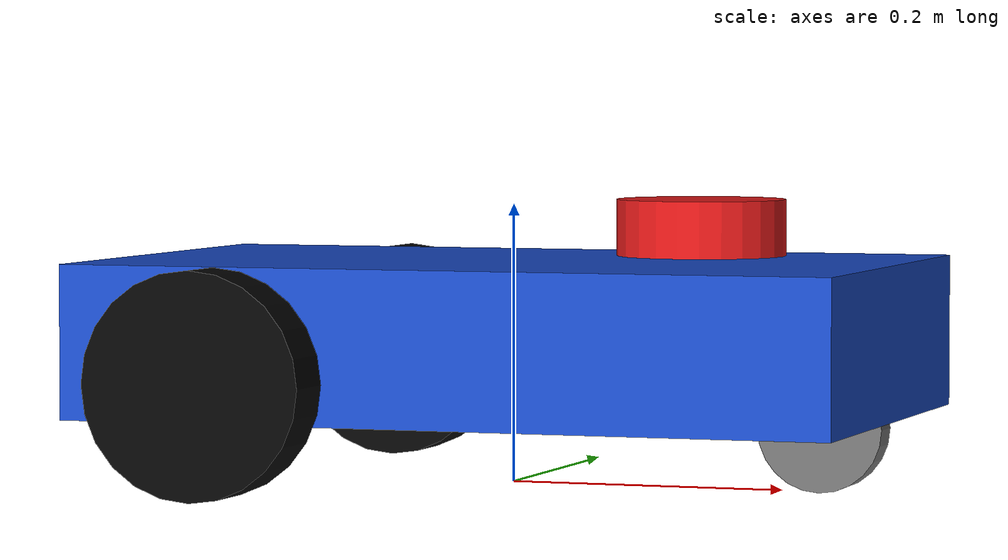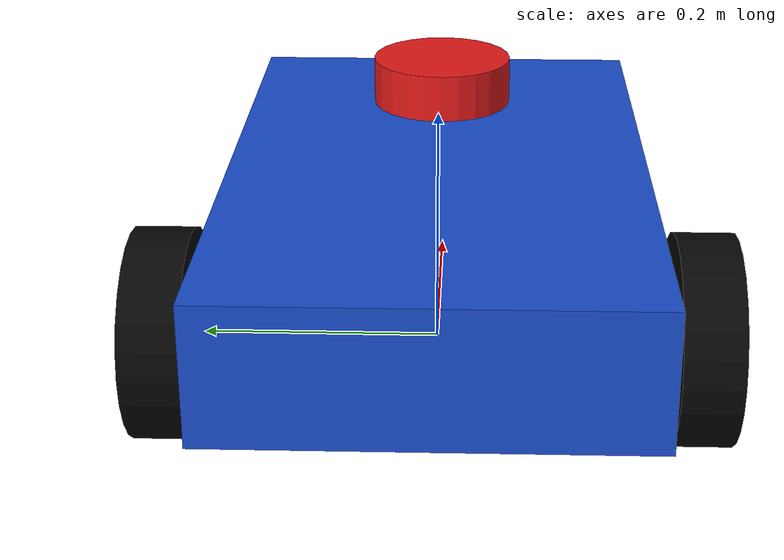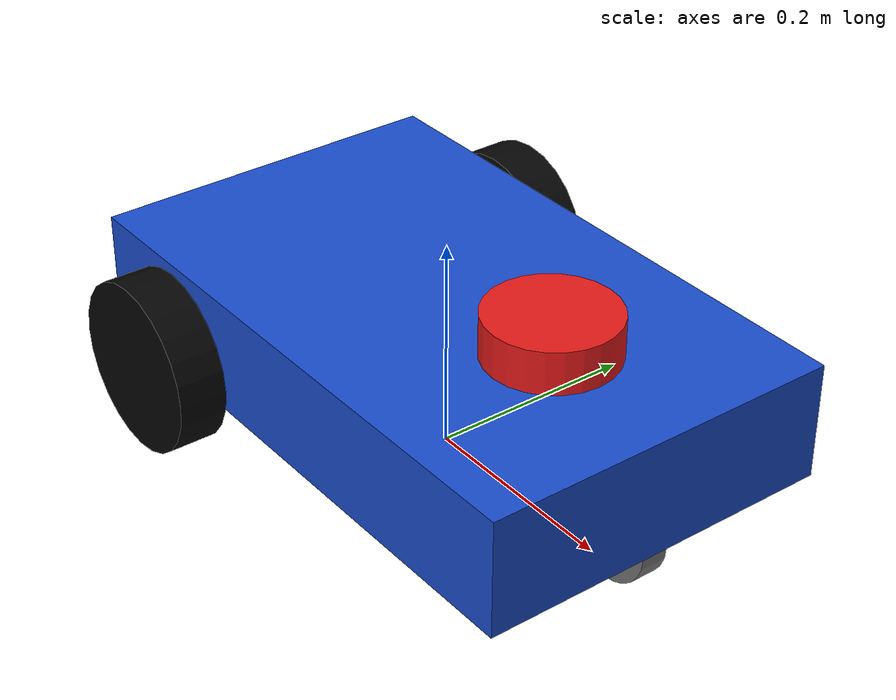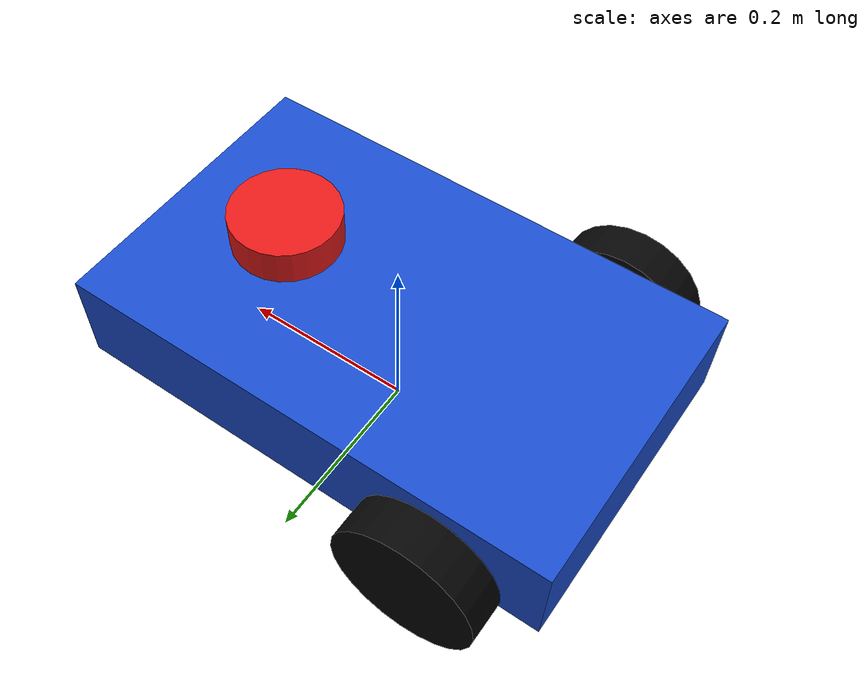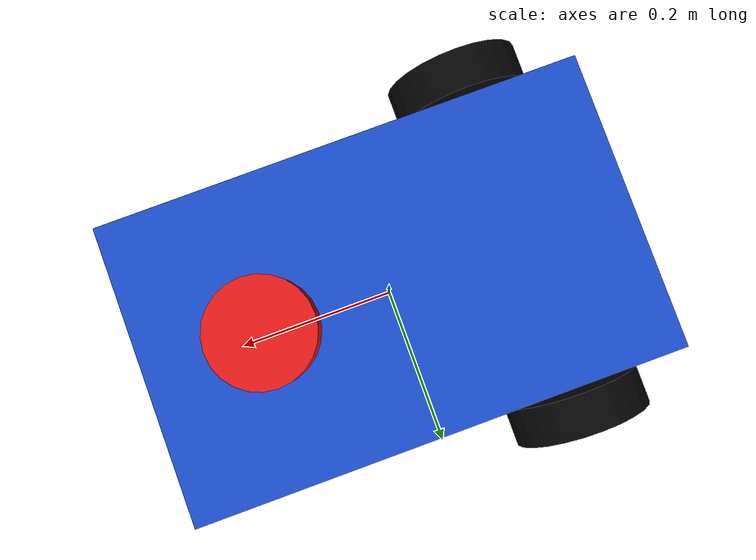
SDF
<?xml version="1.0"?>
<sdf version="1.9">
  <model name="my_robot" canonical_link="base_link">
    <pose>0 0 0 0 0 0</pose>

    <link name="base_footprint">
      <pose>0 0 0 0 0 0</pose>
    </link>

    <link name="base_link">
      <pose>0 0 0.105 0 0 0</pose>

      <inertial>
        <mass>8.0</mass>
        <inertia>
          <ixx>0.085</ixx>
          <ixy>0.0</ixy>
          <ixz>0.0</ixz>
          <iyy>0.217</iyy>
          <iyz>0.0</iyz>
          <izz>0.286</izz>
        </inertia>
      </inertial>

      <collision name="collision">
        <geometry>
          <box>
            <size>0.56 0.34 0.11</size>
          </box>
        </geometry>
      </collision>

      <visual name="visual">
        <geometry>
          <box>
            <size>0.56 0.34 0.11</size>
          </box>
        </geometry>
        <material>
          <ambient>0.1 0.3 0.8 1.0</ambient>
          <diffuse>0.1 0.3 0.8 1.0</diffuse>
        </material>
      </visual>
    </link>

    <link name="laser_link">
      <pose>0.14 0 0.185 0 0 0</pose>

      <inertial>
        <mass>0.2</mass>
        <inertia>
          <ixx>0.0005</ixx>
          <ixy>0.0</ixy>
          <ixz>0.0</ixz>
          <iyy>0.0005</iyy>
          <iyz>0.0</iyz>
          <izz>0.0005</izz>
        </inertia>
      </inertial>

      <collision name="collision">
        <geometry>
          <cylinder>
            <radius>0.06</radius>
            <length>0.04</length>
          </cylinder>
        </geometry>
      </collision>

      <visual name="visual">
        <geometry>
          <cylinder>
            <radius>0.06</radius>
            <length>0.04</length>
          </cylinder>
        </geometry>
        <material>
          <ambient>0.9 0.1 0.1 1.0</ambient>
          <diffuse>0.9 0.1 0.1 1.0</diffuse>
        </material>
      </visual>

      <sensor name="laser_sensor" type="gpu_lidar">
        <pose>0 0 0 0 0 0</pose>
        <topic>/scan</topic>
        <update_rate>10</update_rate>
        <gz_frame_id>laser_link</gz_frame_id>

        <lidar>
          <scan>
            <horizontal>
              <samples>360</samples>
              <resolution>1</resolution>
              <min_angle>-3.14159</min_angle>
              <max_angle>3.14159</max_angle>
            </horizontal>
          </scan>
          <range>
            <min>0.12</min>
            <max>10.0</max>
            <resolution>0.01</resolution>
          </range>
          <noise>
            <type>gaussian</type>
            <mean>0.0</mean>
            <stddev>0.01</stddev>
          </noise>
        </lidar>
        <always_on>true</always_on>
        <visualize>true</visualize>
      </sensor>
    </link>

    <link name="left_wheel_link">
      <pose>-0.16 0.20 0.08 -1.57079632679 0 0</pose>
      <inertial>
        <mass>0.8</mass>
        <inertia>
          <ixx>0.002</ixx>
          <ixy>0.0</ixy>
          <ixz>0.0</ixz>
          <iyy>0.002</iyy>
          <iyz>0.0</iyz>
          <izz>0.002</izz>
        </inertia>
      </inertial>
      <collision name="collision">
        <surface>
          <friction>
            <ode>
              <mu>1.0</mu>
              <mu2>1.0</mu2>
            </ode>
          </friction>
        </surface>
        <geometry>
          <cylinder>
            <radius>0.08</radius>
            <length>0.045</length>
          </cylinder>
        </geometry>
      </collision>
      <visual name="visual">
        <geometry>
          <cylinder>
            <radius>0.08</radius>
            <length>0.045</length>
          </cylinder>
        </geometry>
        <material>
          <ambient>0.02 0.02 0.02 1.0</ambient>
          <diffuse>0.02 0.02 0.02 1.0</diffuse>
        </material>
      </visual>
    </link>

    <link name="right_wheel_link">
      <pose>-0.16 -0.20 0.08 -1.57079632679 0 0</pose>
      <inertial>
        <mass>0.8</mass>
        <inertia>
          <ixx>0.002</ixx>
          <ixy>0.0</ixy>
          <ixz>0.0</ixz>
          <iyy>0.002</iyy>
          <iyz>0.0</iyz>
          <izz>0.002</izz>
        </inertia>
      </inertial>
      <collision name="collision">
        <surface>
          <friction>
            <ode>
              <mu>1.0</mu>
              <mu2>1.0</mu2>
            </ode>
          </friction>
        </surface>
        <geometry>
          <cylinder>
            <radius>0.08</radius>
            <length>0.045</length>
          </cylinder>
        </geometry>
      </collision>
      <visual name="visual">
        <geometry>
          <cylinder>
            <radius>0.08</radius>
            <length>0.045</length>
          </cylinder>
        </geometry>
        <material>
          <ambient>0.02 0.02 0.02 1.0</ambient>
          <diffuse>0.02 0.02 0.02 1.0</diffuse>
        </material>
      </visual>
    </link>

    <link name="caster_swivel_link">
      <pose>0.23 0 0.045 0 0 0</pose>
      <inertial>
        <mass>0.05</mass>
        <inertia>
          <ixx>0.00002</ixx>
          <ixy>0.0</ixy>
          <ixz>0.0</ixz>
          <iyy>0.00002</iyy>
          <iyz>0.0</iyz>
          <izz>0.00002</izz>
        </inertia>
      </inertial>
      <visual name="visual">
        <geometry>
          <sphere>
            <radius>0.015</radius>
          </sphere>
        </geometry>
        <material>
          <ambient>0.45 0.45 0.45 1.0</ambient>
          <diffuse>0.45 0.45 0.45 1.0</diffuse>
        </material>
      </visual>
    </link>

    <link name="caster_wheel_link">
      <pose>0.23 0 0.045 1.57079632679 0 0</pose>
      <inertial>
        <mass>0.15</mass>
        <inertia>
          <ixx>0.0001</ixx>
          <ixy>0.0</ixy>
          <ixz>0.0</ixz>
          <iyy>0.0001</iyy>
          <iyz>0.0</iyz>
          <izz>0.0001</izz>
        </inertia>
      </inertial>
      <collision name="collision">
        <surface>
          <friction>
            <ode>
              <mu>0.15</mu>
              <mu2>0.08</mu2>
            </ode>
          </friction>
        </surface>
        <geometry>
          <cylinder>
            <radius>0.045</radius>
            <length>0.025</length>
          </cylinder>
        </geometry>
      </collision>
      <visual name="visual">
        <geometry>
          <cylinder>
            <radius>0.045</radius>
            <length>0.025</length>
          </cylinder>
        </geometry>
        <material>
          <ambient>0.45 0.45 0.45 1.0</ambient>
          <diffuse>0.45 0.45 0.45 1.0</diffuse>
        </material>
      </visual>
    </link>

    <joint name="base_joint" type="fixed">
      <parent>base_footprint</parent>
      <child>base_link</child>
      <pose relative_to="base_footprint">0 0 0.105 0 0 0</pose>
    </joint>

    <joint name="laser_joint" type="fixed">
      <parent>base_link</parent>
      <child>laser_link</child>
      <pose relative_to="base_link">0.14 0 0.08 0 0 0</pose>
    </joint>

    <joint name="caster_swivel_joint" type="revolute">
      <parent>base_link</parent>
      <child>caster_swivel_link</child>
      <pose relative_to="base_link">0.23 0 -0.06 0 0 0</pose>
      <axis>
        <xyz>0 0 1</xyz>
        <limit>
          <lower>-1e16</lower>
          <upper>1e16</upper>
        </limit>
        <dynamics>
          <damping>0.08</damping>
          <friction>0.0</friction>
        </dynamics>
      </axis>
    </joint>

    <joint name="caster_wheel_joint" type="revolute">
      <parent>caster_swivel_link</parent>
      <child>caster_wheel_link</child>
      <pose relative_to="caster_swivel_link">0 0 0 1.57079632679 0 0</pose>
      <axis>
        <xyz>0 0 1</xyz>
        <limit>
          <lower>-1e16</lower>
          <upper>1e16</upper>
        </limit>
        <dynamics>
          <damping>0.03</damping>
          <friction>0.0</friction>
        </dynamics>
      </axis>
    </joint>

    <joint name="left_wheel_joint" type="revolute">
      <parent>base_link</parent>
      <child>left_wheel_link</child>
      <pose relative_to="base_link">-0.16 0.20 -0.025 -1.57079632679 0 0</pose>
      <axis>
        <xyz>0 0 1</xyz>
        <limit>
          <lower>-1e16</lower>
          <upper>1e16</upper>
          <effort>20</effort>
          <velocity>20</velocity>
        </limit>
      </axis>
    </joint>

    <joint name="right_wheel_joint" type="revolute">
      <parent>base_link</parent>
      <child>right_wheel_link</child>
      <pose relative_to="base_link">-0.16 -0.20 -0.025 -1.57079632679 0 0</pose>
      <axis>
        <xyz>0 0 1</xyz>
        <limit>
          <lower>-1e16</lower>
          <upper>1e16</upper>
          <effort>20</effort>
          <velocity>20</velocity>
        </limit>
      </axis>
    </joint>

    <plugin
      filename="gz-sim-diff-drive-system"
      name="gz::sim::systems::DiffDrive">

      <left_joint>left_wheel_joint</left_joint>
      <right_joint>right_wheel_joint</right_joint>

      <wheel_separation>0.40</wheel_separation>
      <wheel_radius>0.08</wheel_radius>

      <odom_publish_frequency>50</odom_publish_frequency>
      <max_velocity>1.0</max_velocity>
      <max_linear_acceleration>0.2</max_linear_acceleration>

      <topic>/cmd_vel</topic>
      <odom_topic>/odom</odom_topic>
      <frame_id>odom</frame_id>
      <child_frame_id>base_footprint</child_frame_id>
    </plugin>
  </model>
</sdf>
